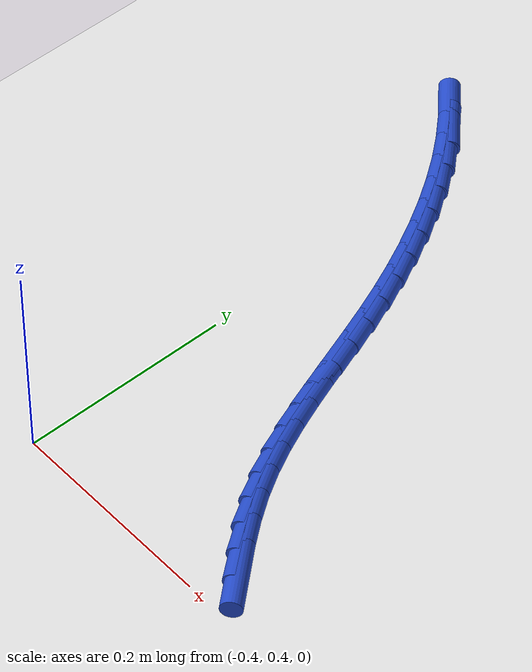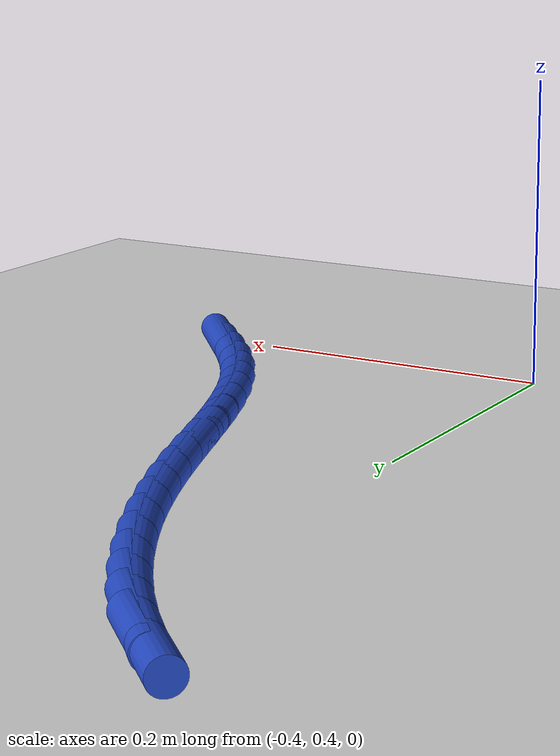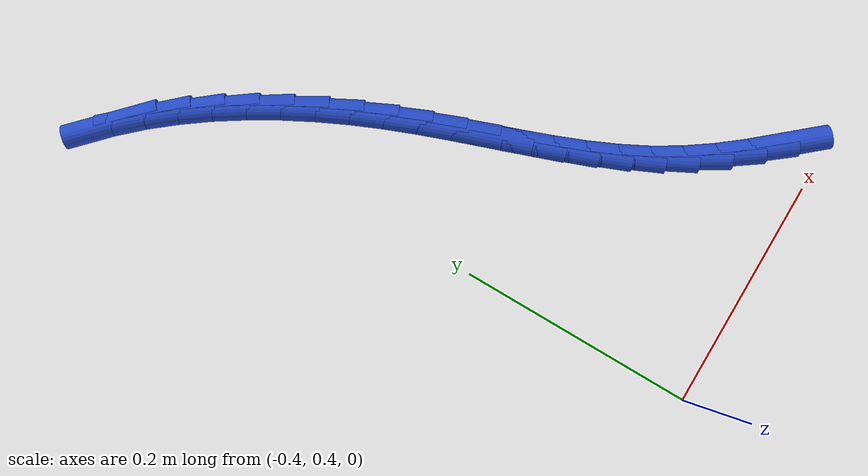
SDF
<sdf version="1.6">
 <world name="default">
  <model name="ground_plane">
   <static>1</static>
   <link name="link">
    <collision name="collision">
     <geometry><plane><normal>0 0 1</normal><size>100 100</size></plane></geometry>
     <surface><friction><ode><mu>100</mu><mu2>50</mu2></ode></friction></surface>
    </collision>
    <visual name="visual">
     <cast_shadows>0</cast_shadows>
     <geometry><plane><normal>0 0 1</normal><size>100 100</size></plane></geometry>
     <material>
      <script><uri>file://media/materials/scripts/gazebo.material</uri><name>Gazebo/WhiteGlow</name></script>
     </material>
    </visual>
   </link>
  </model>
  <model name="line">
   <link name="link_18">
    <pose>-0.1806059818323419 0.43493173325036066 0.01 0 1.57 -0.8612311229371086</pose>
    <collision name="collision">
     <geometry><cylinder><radius>0.01</radius><length>0.08</length></cylinder></geometry>
    </collision>
    <visual name="visual">
     <material>
      <script><name>Gazebo/Blue</name><uri>file://media/materials/scripts/gazebo.material</uri></script>
     </material>
     <geometry><cylinder><radius>0.01</radius><length>0.08</length></cylinder></geometry>
    </visual>
   </link>
   <link name="link_19">
    <pose>-0.19851893136414286 0.4557905061980421 0.01 0 1.57 -0.9038011137190111</pose>
    <collision name="collision">
     <geometry><cylinder><radius>0.01</radius><length>0.08</length></cylinder></geometry>
    </collision>
    <visual name="visual">
     <material>
      <script><name>Gazebo/Blue</name><uri>file://media/materials/scripts/gazebo.material</uri></script>
     </material>
     <geometry><cylinder><radius>0.01</radius><length>0.08</length></cylinder></geometry>
    </visual>
   </link>
   <link name="link_20">
    <pose>-0.21537016471106282 0.47719229530266244 0.01 0 1.57 -0.9612742751960943</pose>
    <collision name="collision">
     <geometry><cylinder><radius>0.01</radius><length>0.08</length></cylinder></geometry>
    </collision>
    <visual name="visual">
     <material>
      <script><name>Gazebo/Blue</name><uri>file://media/materials/scripts/gazebo.material</uri></script>
     </material>
     <geometry><cylinder><radius>0.01</radius><length>0.08</length></cylinder></geometry>
    </visual>
   </link>
   <link name="link_21">
    <pose>-0.23081190259460133 0.499308548583965 0.01 0 1.57 -1.0316155755889715</pose>
    <collision name="collision">
     <geometry><cylinder><radius>0.01</radius><length>0.08</length></cylinder></geometry>
    </collision>
    <visual name="visual">
     <material>
      <script><name>Gazebo/Blue</name><uri>file://media/materials/scripts/gazebo.material</uri></script>
     </material>
     <geometry><cylinder><radius>0.01</radius><length>0.08</length></cylinder></geometry>
    </visual>
   </link>
   <link name="link_22">
    <pose>-0.24455812770764399 0.5222833853581174 0.01 0 1.57 -1.0972253836234325</pose>
    <collision name="collision">
     <geometry><cylinder><radius>0.01</radius><length>0.08</length></cylinder></geometry>
    </collision>
    <visual name="visual">
     <material>
      <script><name>Gazebo/Blue</name><uri>file://media/materials/scripts/gazebo.material</uri></script>
     </material>
     <geometry><cylinder><radius>0.01</radius><length>0.08</length></cylinder></geometry>
    </visual>
   </link>
   <link name="link_23">
    <pose>-0.2567491406894277 0.5460722859370076 0.01 0 1.57 -1.1499652844287296</pose>
    <collision name="collision">
     <geometry><cylinder><radius>0.01</radius><length>0.08</length></cylinder></geometry>
    </collision>
    <visual name="visual">
     <material>
      <script><name>Gazebo/Blue</name><uri>file://media/materials/scripts/gazebo.material</uri></script>
     </material>
     <geometry><cylinder><radius>0.01</radius><length>0.08</length></cylinder></geometry>
    </visual>
   </link>
   <link name="link_24">
    <pose>-0.26770513062904844 0.5705511328150873 0.01 0 1.57 -1.1894629822158114</pose>
    <collision name="collision">
     <geometry><cylinder><radius>0.01</radius><length>0.08</length></cylinder></geometry>
    </collision>
    <visual name="visual">
     <material>
      <script><name>Gazebo/Blue</name><uri>file://media/materials/scripts/gazebo.material</uri></script>
     </material>
     <geometry><cylinder><radius>0.01</radius><length>0.08</length></cylinder></geometry>
    </visual>
   </link>
   <link name="link_25">
    <pose>-0.2777469211823199 0.5955955277009889 0.01 0 1.57 -1.2157689827839206</pose>
    <collision name="collision">
     <geometry><cylinder><radius>0.01</radius><length>0.08</length></cylinder></geometry>
    </collision>
    <visual name="visual">
     <material>
      <script><name>Gazebo/Blue</name><uri>file://media/materials/scripts/gazebo.material</uri></script>
     </material>
     <geometry><cylinder><radius>0.01</radius><length>0.08</length></cylinder></geometry>
    </visual>
   </link>
   <link name="link_26">
    <pose>-0.28719533600505603 0.6210810723033456 0.01 0 1.57 -1.2291218972281268</pose>
    <collision name="collision">
     <geometry><cylinder><radius>0.01</radius><length>0.08</length></cylinder></geometry>
    </collision>
    <visual name="visual">
     <material>
      <script><name>Gazebo/Blue</name><uri>file://media/materials/scripts/gazebo.material</uri></script>
     </material>
     <geometry><cylinder><radius>0.01</radius><length>0.08</length></cylinder></geometry>
    </visual>
   </link>
   <link name="link_27">
    <pose>-0.2963711987530705 0.64688336833079 0.01 0 1.57 -1.2298096322728906</pose>
    <collision name="collision">
     <geometry><cylinder><radius>0.01</radius><length>0.08</length></cylinder></geometry>
    </collision>
    <visual name="visual">
     <material>
      <script><name>Gazebo/Blue</name><uri>file://media/materials/scripts/gazebo.material</uri></script>
     </material>
     <geometry><cylinder><radius>0.01</radius><length>0.08</length></cylinder></geometry>
    </visual>
   </link>
   <link name="link_28">
    <pose>-0.3055953330821772 0.6728780174919547 0.01 0 1.57 -1.2181026734122422</pose>
    <collision name="collision">
     <geometry><cylinder><radius>0.01</radius><length>0.08</length></cylinder></geometry>
    </collision>
    <visual name="visual">
     <material>
      <script><name>Gazebo/Blue</name><uri>file://media/materials/scripts/gazebo.material</uri></script>
     </material>
     <geometry><cylinder><radius>0.01</radius><length>0.08</length></cylinder></geometry>
    </visual>
   </link>
   <link name="link_29">
    <pose>-0.31518856264818984 0.698940621495473 0.01 0 1.57 -1.1942646487385227</pose>
    <collision name="collision">
     <geometry><cylinder><radius>0.01</radius><length>0.08</length></cylinder></geometry>
    </collision>
    <visual name="visual">
     <material>
      <script><name>Gazebo/Blue</name><uri>file://media/materials/scripts/gazebo.material</uri></script>
     </material>
     <geometry><cylinder><radius>0.01</radius><length>0.08</length></cylinder></geometry>
    </visual>
   </link>
   <link name="link_30">
    <pose>-0.32547129347290776 0.7249467371017235 0.01 0 1.57 -1.161202773439375</pose>
    <collision name="collision">
     <geometry><cylinder><radius>0.01</radius><length>0.08</length></cylinder></geometry>
    </collision>
    <visual name="visual">
     <material>
      <script><name>Gazebo/Blue</name><uri>file://media/materials/scripts/gazebo.material</uri></script>
     </material>
     <geometry><cylinder><radius>0.01</radius><length>0.08</length></cylinder></geometry>
    </visual>
   </link>
   <link name="link_31">
    <pose>-0.33667929226755866 0.7507628116856874 0.01 0 1.57 -1.1247023041700943</pose>
    <collision name="collision">
     <geometry><cylinder><radius>0.01</radius><length>0.08</length></cylinder></geometry>
    </collision>
    <visual name="visual">
     <material>
      <script><name>Gazebo/Blue</name><uri>file://media/materials/scripts/gazebo.material</uri></script>
     </material>
     <geometry><cylinder><radius>0.01</radius><length>0.08</length></cylinder></geometry>
    </visual>
   </link>
   <link name="link_32">
    <pose>-0.3488613640812304 0.7762351706976317 0.01 0 1.57 -1.08517020894588</pose>
    <collision name="collision">
     <geometry><cylinder><radius>0.01</radius><length>0.08</length></cylinder></geometry>
    </collision>
    <visual name="visual">
     <material>
      <script><name>Gazebo/Blue</name><uri>file://media/materials/scripts/gazebo.material</uri></script>
     </material>
     <geometry><cylinder><radius>0.01</radius><length>0.08</length></cylinder></geometry>
    </visual>
   </link>
   <link name="link_33">
    <pose>-0.3620413056211553 0.8012074480415127 0.01 0 1.57 -1.042188933691912</pose>
    <collision name="collision">
     <geometry><cylinder><radius>0.01</radius><length>0.08</length></cylinder></geometry>
    </collision>
    <visual name="visual">
     <material>
      <script><name>Gazebo/Blue</name><uri>file://media/materials/scripts/gazebo.material</uri></script>
     </material>
     <geometry><cylinder><radius>0.01</radius><length>0.08</length></cylinder></geometry>
    </visual>
   </link>
   <link name="link_34">
    <pose>-0.3762429135945657 0.8255232776212864 0.01 0 1.57 -0.9953156247521674</pose>
    <collision name="collision">
     <geometry><cylinder><radius>0.01</radius><length>0.08</length></cylinder></geometry>
    </collision>
    <visual name="visual">
     <material>
      <script><name>Gazebo/Blue</name><uri>file://media/materials/scripts/gazebo.material</uri></script>
     </material>
     <geometry><cylinder><radius>0.01</radius><length>0.08</length></cylinder></geometry>
    </visual>
   </link>
   <link name="link_35">
    <pose>-0.3914899847086936 0.8490262933409088 0.01 0 1.57 -0.9440905224962252</pose>
    <collision name="collision">
     <geometry><cylinder><radius>0.01</radius><length>0.08</length></cylinder></geometry>
    </collision>
    <visual name="visual">
     <material>
      <script><name>Gazebo/Blue</name><uri>file://media/materials/scripts/gazebo.material</uri></script>
     </material>
     <geometry><cylinder><radius>0.01</radius><length>0.08</length></cylinder></geometry>
    </visual>
   </link>
   <link name="link_36">
    <pose>-0.4078063156707718 0.8715601291043363 0.01 0 1.57 -0.888053592743803</pose>
    <collision name="collision">
     <geometry><cylinder><radius>0.01</radius><length>0.08</length></cylinder></geometry>
    </collision>
    <visual name="visual">
     <material>
      <script><name>Gazebo/Blue</name><uri>file://media/materials/scripts/gazebo.material</uri></script>
     </material>
     <geometry><cylinder><radius>0.01</radius><length>0.08</length></cylinder></geometry>
    </visual>
   </link>
   <link name="link_37">
    <pose>-0.42521570318803215 0.8929684188155244 0.01 0 1.57 -0.8267724271265031</pose>
    <collision name="collision">
     <geometry><cylinder><radius>0.01</radius><length>0.08</length></cylinder></geometry>
    </collision>
    <visual name="visual">
     <material>
      <script><name>Gazebo/Blue</name><uri>file://media/materials/scripts/gazebo.material</uri></script>
     </material>
     <geometry><cylinder><radius>0.01</radius><length>0.08</length></cylinder></geometry>
    </visual>
   </link>
   <link name="link_38">
    <pose>-0.4437419439677074 0.9130947963784299 0.01 0 1.57 -0.7598844287268709</pose>
    <collision name="collision">
     <geometry><cylinder><radius>0.01</radius><length>0.08</length></cylinder></geometry>
    </collision>
    <visual name="visual">
     <material>
      <script><name>Gazebo/Blue</name><uri>file://media/materials/scripts/gazebo.material</uri></script>
     </material>
     <geometry><cylinder><radius>0.01</radius><length>0.08</length></cylinder></geometry>
    </visual>
   </link>
  </model>
 </world>
</sdf>
